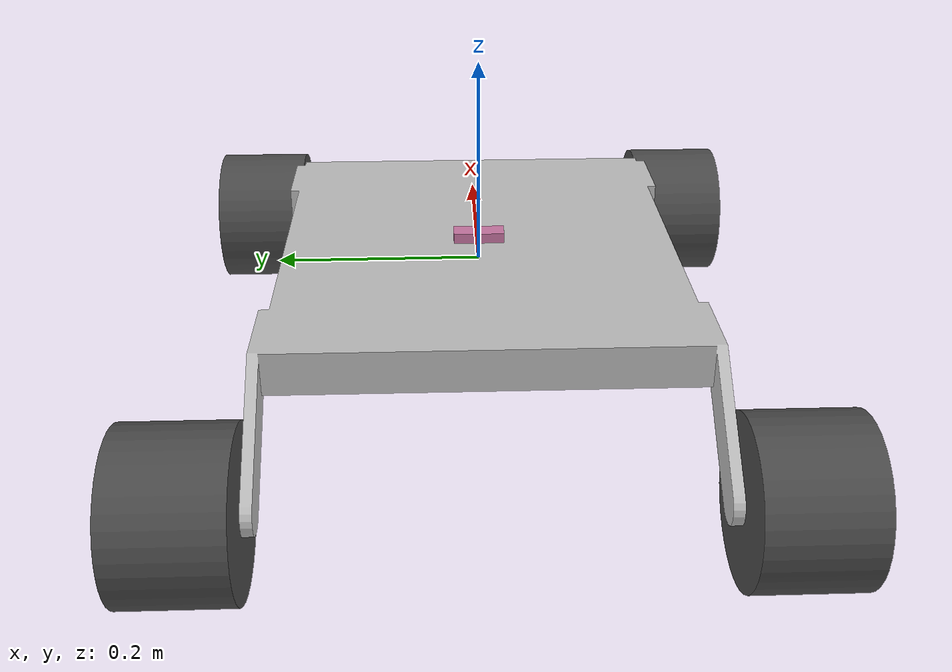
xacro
<robot xmlns:xacro="http://www.ros.org/wiki/xacro" name="wall_e">

  <xacro:include filename="$(find wall_e_description)/urdf/wall_e.gazebo.xacro"/>
  <xacro:include filename="$(find wall_e_description)/urdf/wall_e_ros2_control.xacro"/>

  <link name="base_footprint">
  </link>

  <joint name="base_joint" type="fixed">
    <parent link="base_footprint"/>
    <child link="base_link"/>
    <origin rpy="0 0 0" xyz="0 0 0.02"/>
  </joint>

  <link
    name="base_link">
    <inertial>
      <origin
        xyz="2.12503625807159E-17 0 -0.0212688653283583"
        rpy="0 0 0" />
      <mass
        value="19.7944372375747" />
      <inertia
        ixx="0.236926173828267"
        ixy="2.08285401729832E-18"
        ixz="3.25260651745651E-19"
        iyy="0.335947375820388"
        iyz="7.19978005166155E-21"
        izz="0.566141968007365" />
    </inertial>
    <visual>
      <origin
        xyz="0 0 0"
        rpy="0 0 0" />
      <geometry>
        <mesh
          filename="package://wall_e_description/meshes/base_link.STL" />
      </geometry>
      <material
        name="">
        <color
          rgba="0.752941176470588 0.752941176470588 0.752941176470588 1" />
      </material>
    </visual>
    <collision>
      <origin
        xyz="0 0 0"
        rpy="0 0 0" />
      <geometry>
        <mesh
          filename="package://wall_e_description/meshes/base_link.STL" />
      </geometry>
    </collision>
  </link>
  <link
    name="FL_link">
    <inertial>
      <origin
        xyz="-2.7756E-16 -0.049964 -1.9915E-15"
        rpy="0 0 0" />
      <mass
        value="1.7656" />
      <inertia
        ixx="0.0039551"
        ixy="1.3837E-18"
        ixz="-2.0269E-19"
        iyy="0.0049701"
        iyz="1.6232E-18"
        izz="0.0039551" />
    </inertial>
    <visual>
      <origin
        xyz="0 0 0"
        rpy="0 0 0" />
      <geometry>
        <mesh
          filename="package://wall_e_description/meshes/FL_link.STL" />
      </geometry>
      <material
        name="">
        <color
          rgba="0.29804 0.29804 0.29804 1" />
      </material>
    </visual>
    <collision>
      <origin
        xyz="0 0 0"
        rpy="0 0 0" />
      <geometry>
        <mesh
          filename="package://wall_e_description/meshes/FL_link.STL" />
      </geometry>
    </collision>
  </link>
  <joint
    name="FL_joint"
    type="continuous">
    <origin
      xyz="0.31152 0.302 -0.099351"
      rpy="0 0 0" />
    <parent
      link="base_link" />
    <child
      link="FL_link" />
    <axis
      xyz="0 1 0" />
  </joint>
  <link
    name="FR_link">
    <inertial>
      <origin
        xyz="0 0.049964 6.9389E-18"
        rpy="0 0 0" />
      <mass
        value="1.7656" />
      <inertia
        ixx="0.0039551"
        ixy="-7.6372E-19"
        ixz="1.5112E-19"
        iyy="0.0049701"
        iyz="-1.9258E-19"
        izz="0.0039551" />
    </inertial>
    <visual>
      <origin
        xyz="0 0 0"
        rpy="0 0 0" />
      <geometry>
        <mesh
          filename="package://wall_e_description/meshes/FR_link.STL" />
      </geometry>
      <material
        name="">
        <color
          rgba="0.29804 0.29804 0.29804 1" />
      </material>
    </visual>
    <collision>
      <origin
        xyz="0 0 0"
        rpy="0 0 0" />
      <geometry>
        <mesh
          filename="package://wall_e_description/meshes/FR_link.STL" />
      </geometry>
    </collision>
  </link>
  <joint
    name="FR_joint"
    type="continuous">
    <origin
      xyz="0.31152 -0.302 -0.099351"
      rpy="0 0 0" />
    <parent
      link="base_link" />
    <child
      link="FR_link" />
    <axis
      xyz="0 1 0" />
  </joint>
  <link
    name="BL_link">
    <inertial>
      <origin
        xyz="5.5511E-17 -0.049964 6.9389E-18"
        rpy="0 0 0" />
      <mass
        value="1.7656" />
      <inertia
        ixx="0.0039551"
        ixy="2.3359E-19"
        ixz="-5.627E-20"
        iyy="0.0049701"
        iyz="-5.1707E-20"
        izz="0.0039551" />
    </inertial>
    <visual>
      <origin
        xyz="0 0 0"
        rpy="0 0 0" />
      <geometry>
        <mesh
          filename="package://wall_e_description/meshes/BL_link.STL" />
      </geometry>
      <material
        name="">
        <color
          rgba="0.29804 0.29804 0.29804 1" />
      </material>
    </visual>
    <collision>
      <origin
        xyz="0 0 0"
        rpy="0 0 0" />
      <geometry>
        <mesh
          filename="package://wall_e_description/meshes/BL_link.STL" />
      </geometry>
    </collision>
  </link>
  <joint
    name="BL_joint"
    type="continuous">
    <origin
      xyz="-0.31152 0.302 -0.099351"
      rpy="0 0 0" />
    <parent
      link="base_link" />
    <child
      link="BL_link" />
    <axis
      xyz="0 1 0" />
  </joint>
  <link
    name="BR_link">
    <inertial>
      <origin
        xyz="5.5511E-17 0.049964 -6.9389E-18"
        rpy="0 0 0" />
      <mass
        value="1.7656" />
      <inertia
        ixx="0.0039551"
        ixy="6.4164E-19"
        ixz="5.5883E-20"
        iyy="0.0049701"
        iyz="-1.0198E-19"
        izz="0.0039551" />
    </inertial>
    <visual>
      <origin
        xyz="0 0 0"
        rpy="0 0 0" />
      <geometry>
        <mesh
          filename="package://wall_e_description/meshes/BR_link.STL" />
      </geometry>
      <material
        name="">
        <color
          rgba="0.29804 0.29804 0.29804 1" />
      </material>
    </visual>
    <collision>
      <origin
        xyz="0 0 0"
        rpy="0 0 0" />
      <geometry>
        <mesh
          filename="package://wall_e_description/meshes/BR_link.STL" />
      </geometry>
    </collision>
  </link>

    <joint
    name="BR_joint"
    type="continuous">
    <origin
      xyz="-0.31152 -0.302 -0.099351"
      rpy="0 0 0" />
    <parent
      link="base_link" />
    <child
      link="BR_link" />
    <axis
      xyz="0 1 0" />
  </joint>

    <gazebo>
    <plugin filename="libgazebo_ros_diff_drive.so" name="skid_steer_drive">
      <!-- Update rate -->
      <update_rate>500</update_rate>
      <!-- Number of wheel pairs -->
      <num_wheel_pairs>2</num_wheel_pairs>
      <!-- wheels0 -->
      <left_joint>FL_joint</left_joint>
      <right_joint>FR_joint</right_joint>
      <!-- wheels1-->
      <left_joint>BL_joint</left_joint>
      <right_joint>BR_joint</right_joint>
      <!-- kinematics -->
      <wheel_separation>0.33</wheel_separation>
      <wheel_separation>0.33</wheel_separation>
      <wheel_diameter>0.152</wheel_diameter>
      <wheel_diameter>0.152</wheel_diameter>
      <!-- limits -->
      <max_wheel_torque>200</max_wheel_torque>
      <max_wheel_acceleration>10.0</max_wheel_acceleration>
      <!-- output -->
      <odometry_frame>odom</odometry_frame>
      <robot_base_frame>base_footprint</robot_base_frame>
      <publish_odom>true</publish_odom>
      <publish_odom_tf>true</publish_odom_tf>
      <publish_wheel_tf>true</publish_wheel_tf>
    </plugin>
  </gazebo>

  <link
    name="IMU_link">
    <inertial>
      <origin
        xyz="-4.3368E-19 -1.7347E-18 -0.005"
        rpy="0 0 0" />
      <mass
        value="0.089" />
      <inertia
        ixx="1.9283E-05"
        ixy="0"
        ixz="0"
        iyy="3.7083E-06"
        iyz="-4.7189E-39"
        izz="2.1508E-05" />
    </inertial>
    <visual>
      <origin
        xyz="0 0 0"
        rpy="0 0 0" />
      <geometry>
        <mesh
          filename="package://wall_e_description/meshes/IMU_link.STL" />
      </geometry>
    </visual>
    <collision>
      <origin
        xyz="0 0 0"
        rpy="0 0 0" />
      <geometry>
        <mesh
          filename="package://wall_e_description/meshes/IMU_link.STL" />
      </geometry>
    </collision>
  </link>
  <joint
    name="IMU_joint"
    type="fixed">
    <origin
      xyz="0 0 0.01"
      rpy="0 0 0" />
    <parent
      link="base_link" />
    <child
      link="IMU_link" />
    <axis
      xyz="0 0 0" />
  </joint>

    <link name="gps_link"/>

    <!-- Add the gps link so we get a static transform for the GPS -->
    <joint name="gps_joint" type="fixed">
      <parent link="base_link"/>
      <child link="gps_link"/>
      <origin xyz="0 0 0" rpy="0 0 0"/>
    </joint>

    </robot>
